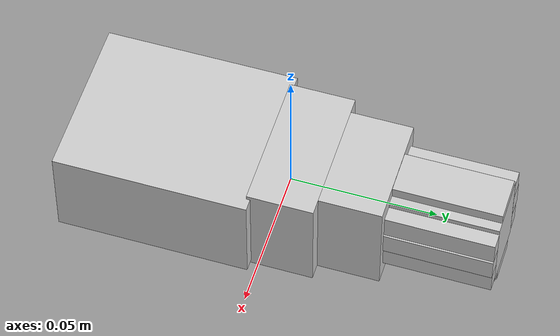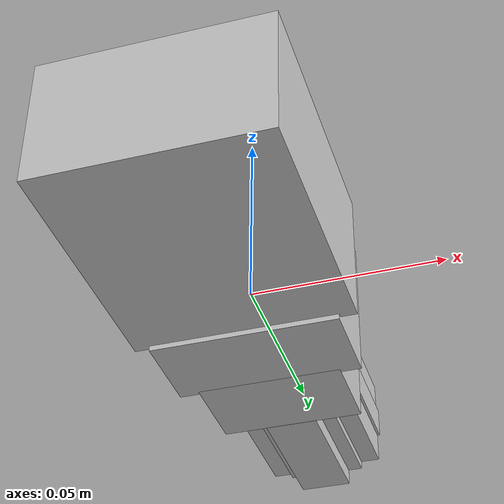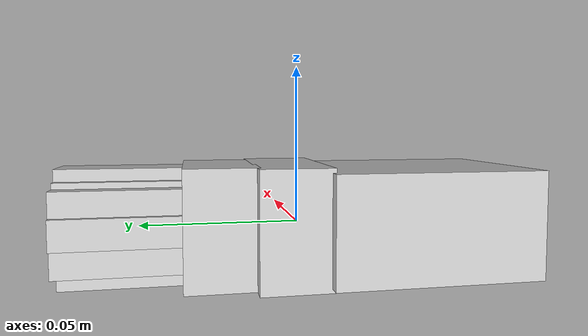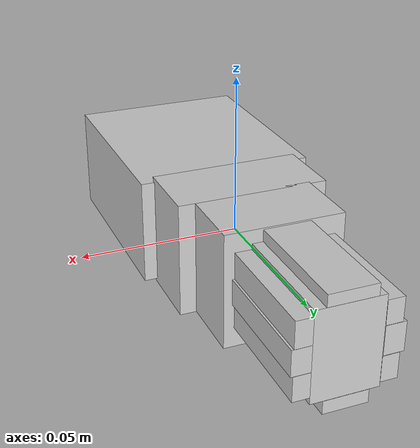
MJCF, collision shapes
<mujoco model="textured">
  <compiler meshdir="F:/--CodeRepo/--CodeRepo/Research/___Mujoco/mujoco/mujoco/icse27/mujoco_rl_fuzz_2.0/.cache/repos/libero/libero/libero/assets/stable_hope_objects/ketchup" texturedir="F:/--CodeRepo/--CodeRepo/Research/___Mujoco/mujoco/mujoco/icse27/mujoco_rl_fuzz_2.0/.cache/repos/libero/libero/libero/assets/stable_hope_objects/ketchup" assetdir="F:/--CodeRepo/--CodeRepo/Research/___Mujoco/mujoco/mujoco/icse27/mujoco_rl_fuzz_2.0/.cache/repos/libero/libero/libero/assets/stable_hope_objects/ketchup"/><asset>
  <texture file="texture_map.png" name="tex-textured" type="2d"/>
  <material name="textured" reflectance="0.5" texrepeat="1 1" texture="tex-textured" texuniform="false"/>
  <mesh file="visual/textured_vis.msh" name="textured_vis" scale="0.01 0.01 0.01"/></asset>
  <worldbody>
    <body>
      <body name="object">
      <geom solimp="0.998 0.998 0.001" solref="0.001 1" density="100" friction="0.95 0.3 0.1" type="mesh" mesh="textured_vis" conaffinity="0" contype="0" group="1" material="textured"/><geom solimp="0.998 0.998 0.001" solref="0.001 1" density="100" friction="0.95 0.3 0.1" type="box" pos="0.00045 -0.03935 0.00079" quat="0.50000 0.50000 0.50000 -0.50000" size="0.01695 0.02811 0.03307" group="0" rgba="0.8 0.8 0.8 0.3"/><geom solimp="0.998 0.998 0.001" solref="0.001 1" density="100" friction="0.95 0.3 0.1" type="box" pos="0.00045 0.00369 0.00079" quat="0.50000 0.50000 -0.50000 -0.50000" size="0.01126 0.01834 0.02393" group="0" rgba="0.8 0.8 0.8 0.3"/><geom solimp="0.998 0.998 0.001" solref="0.001 1" density="100" friction="0.95 0.3 0.1" type="box" pos="0.00045 0.02513 0.00079" quat="0.50000 0.50000 -0.50000 -0.50000" size="0.01126 0.01834 0.01869" group="0" rgba="0.8 0.8 0.8 0.3"/><geom solimp="0.998 0.998 0.001" solref="0.001 1" density="100" friction="0.95 0.3 0.1" type="box" pos="0.00045 0.05471 0.00079" quat="0.00000 -0.00000 0.70711 -0.70711" size="0.01032 0.01414 0.01848" group="0" rgba="0.8 0.8 0.8 0.3"/><geom solimp="0.998 0.998 0.001" solref="0.001 1" density="100" friction="0.95 0.3 0.1" type="box" pos="0.01368 0.05471 0.00079" quat="0.70711 0.70711 0.00000 -0.00000" size="0.00292 0.00405 0.01848" group="0" rgba="0.8 0.8 0.8 0.3"/><geom solimp="0.998 0.998 0.001" solref="0.001 1" density="100" friction="0.95 0.3 0.1" type="box" pos="-0.01322 0.05471 0.00079" quat="0.00000 0.00000 0.70711 0.70711" size="0.00315 0.00460 0.01848" group="0" rgba="0.8 0.8 0.8 0.3"/><geom solimp="0.998 0.998 0.001" solref="0.001 1" density="100" friction="0.95 0.3 0.1" type="box" pos="0.00008 0.05471 -0.01554" quat="0.50000 -0.50000 0.50000 0.50000" size="0.00209 0.00685 0.01848" group="0" rgba="0.8 0.8 0.8 0.3"/><geom solimp="0.998 0.998 0.001" solref="0.001 1" density="100" friction="0.95 0.3 0.1" type="box" pos="0.00002 0.05471 0.01682" quat="0.50000 -0.50000 0.50000 0.50000" size="0.00186 0.00740 0.01848" group="0" rgba="0.8 0.8 0.8 0.3"/><geom solimp="0.998 0.998 0.001" solref="0.001 1" density="100" friction="0.95 0.3 0.1" type="box" pos="0.01333 0.05471 0.00901" quat="0.70711 0.70711 0.00000 -0.00000" size="0.00259 0.00413 0.01848" group="0" rgba="0.8 0.8 0.8 0.3"/><geom solimp="0.998 0.998 0.001" solref="0.001 1" density="100" friction="0.95 0.3 0.1" type="box" pos="0.01333 0.05471 -0.00727" quat="0.00000 0.00000 0.70711 0.70711" size="0.00259 0.00392 0.01848" group="0" rgba="0.8 0.8 0.8 0.3"/><geom solimp="0.998 0.998 0.001" solref="0.001 1" density="100" friction="0.95 0.3 0.1" type="box" pos="-0.01254 0.05471 -0.00799" quat="0.00000 0.00000 0.70711 0.70711" size="0.00259 0.00405 0.01848" group="0" rgba="0.8 0.8 0.8 0.3"/><geom solimp="0.998 0.998 0.001" solref="0.001 1" density="100" friction="0.95 0.3 0.1" type="box" pos="-0.01259 0.05471 0.00929" quat="0.00000 0.00000 0.70711 0.70711" size="0.00259 0.00380 0.01848" group="0" rgba="0.8 0.8 0.8 0.3"/></body>
      <site rgba="0 0 0 0" size="0.005" pos="0 0 -0.06" name="bottom_site"/>
      <site rgba="0 0 0 0" size="0.005" pos="0 0 0.04" name="top_site"/>
      <site rgba="0 0 0 0" size="0.005" pos="0.025 0.025 0" name="horizontal_radius_site"/>
    </body>
  </worldbody>
</mujoco>
